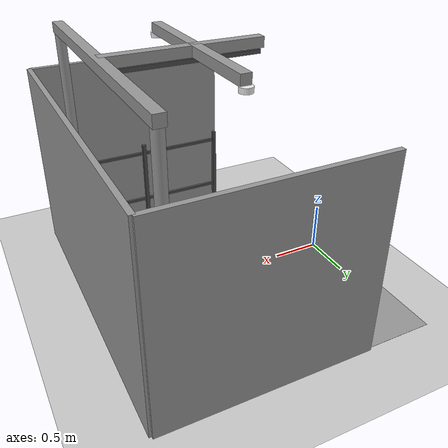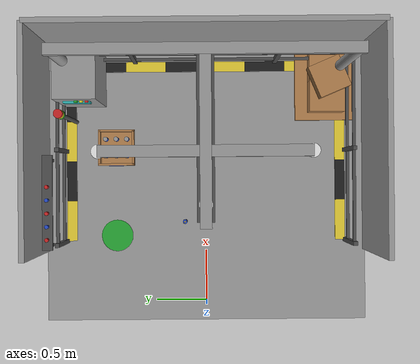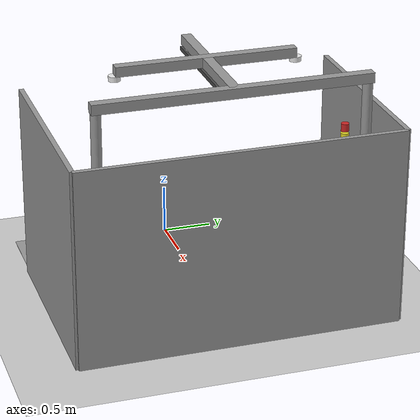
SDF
<sdf version="1.4">
 <world name="bimanual_manipulation_world">
  <include><uri>model://sun</uri></include>
  <include><uri>model://ground_plane</uri></include>
  <model name="placement_area_final_left">
   <static>true</static>
   <pose>0.680 0.85 0.701 0 0 0</pose>
   <link name="link">
    <visual name="vis">
     <geometry><cylinder><radius>0.15</radius><length>0.002</length></cylinder></geometry>
     <material>
      <script><uri>file://media/materials/scripts/gazebo.material</uri><name>Gazebo/Green</name></script>
     </material>
    </visual>
   </link>
  </model>
  <model name="blue_cylinder">
   <static>false</static>
   <pose>0.810 0.20 0.730 0 0 0</pose>
   <link name="link">
    <inertial>
     <mass>0.15</mass>
     <inertia>
      <ixx>0.000309</ixx>
      <iyy>0.000309</iyy>
      <izz>0.000030</izz>
      <ixy>0</ixy>
      <ixz>0</ixz>
      <iyz>0</iyz>
     </inertia>
    </inertial>
    <collision name="col">
     <geometry><cylinder><radius>0.02</radius><length>0.16</length></cylinder></geometry>
     <surface>
      <contact>
       <ode>
        <soft_cfm>0.0</soft_cfm>
        <soft_erp>0.5</soft_erp>
        <kp>20000</kp>
        <kd>50</kd>
        <max_vel>1.0</max_vel>
        <min_depth>0.001</min_depth>
       </ode>
      </contact>
      <friction><ode><mu>0.6</mu><mu2>0.6</mu2></ode></friction>
     </surface>
    </collision>
    <visual name="vis">
     <geometry><cylinder><radius>0.02</radius><length>0.16</length></cylinder></geometry>
     <material>
      <script><uri>file://media/materials/scripts/gazebo.material</uri><name>Gazebo/Blue</name></script>
     </material>
    </visual>
    <visual name="cap_top">
     <pose>0 0 0.0725 0 0 0</pose>
     <geometry><cylinder><radius>0.0205</radius><length>0.0149</length></cylinder></geometry>
     <material>
      <script><uri>file://media/materials/scripts/gazebo.material</uri><name>Gazebo/Grey</name></script>
     </material>
    </visual>
    <visual name="terminal_nub">
     <pose>0 0 0.0843 0 0 0</pose>
     <geometry><cylinder><radius>0.008</radius><length>0.0085</length></cylinder></geometry>
     <material>
      <script><uri>file://media/materials/scripts/gazebo.material</uri><name>Gazebo/Gold</name></script>
     </material>
    </visual>
    <visual name="cap_bottom">
     <pose>0 0 -0.0736 0 0 0</pose>
     <geometry><cylinder><radius>0.0205</radius><length>0.0128</length></cylinder></geometry>
     <material>
      <script><uri>file://media/materials/scripts/gazebo.material</uri><name>Gazebo/DarkGrey</name></script>
     </material>
    </visual>
    <visual name="label_band_top">
     <pose>0 0 0.0373 0 0 0</pose>
     <geometry><cylinder><radius>0.0206</radius><length>0.0107</length></cylinder></geometry>
     <material>
      <script><uri>file://media/materials/scripts/gazebo.material</uri><name>Gazebo/FlatBlack</name></script>
     </material>
    </visual>
    <visual name="label_band_bottom">
     <pose>0 0 -0.0373 0 0 0</pose>
     <geometry><cylinder><radius>0.0206</radius><length>0.0107</length></cylinder></geometry>
     <material>
      <script><uri>file://media/materials/scripts/gazebo.material</uri><name>Gazebo/FlatBlack</name></script>
     </material>
    </visual>
    <visual name="label_patch">
     <geometry><cylinder><radius>0.0207</radius><length>0.0320</length></cylinder></geometry>
     <material>
      <script><uri>file://media/materials/scripts/gazebo.material</uri><name>Gazebo/White</name></script>
     </material>
    </visual>
   </link>
  </model>
  <model name="battery_chest_left">
   <static>true</static>
   <pose>1.52 0.85 0 0 0 0</pose>
   <link name="link">
    <visual name="chest_floor">
     <pose>0 0 0.710 0 0 0</pose>
     <geometry><box><size>0.34 0.34 0.02</size></box></geometry>
     <material>
      <script><uri>file://media/materials/scripts/gazebo.material</uri><name>Gazebo/Wood</name></script>
     </material>
    </visual>
    <visual name="wall_far">
     <pose>0.16 0 0.790 0 0 0</pose>
     <geometry><box><size>0.02 0.34 0.14</size></box></geometry>
     <material>
      <script><uri>file://media/materials/scripts/gazebo.material</uri><name>Gazebo/Wood</name></script>
     </material>
    </visual>
    <visual name="wall_near">
     <pose>-0.16 0 0.790 0 0 0</pose>
     <geometry><box><size>0.02 0.34 0.14</size></box></geometry>
     <material>
      <script><uri>file://media/materials/scripts/gazebo.material</uri><name>Gazebo/Wood</name></script>
     </material>
    </visual>
    <visual name="wall_outer">
     <pose>0 0.16 0.790 0 0 0</pose>
     <geometry><box><size>0.34 0.02 0.14</size></box></geometry>
     <material>
      <script><uri>file://media/materials/scripts/gazebo.material</uri><name>Gazebo/Wood</name></script>
     </material>
    </visual>
    <visual name="wall_inner">
     <pose>0 -0.16 0.790 0 0 0</pose>
     <geometry><box><size>0.34 0.02 0.14</size></box></geometry>
     <material>
      <script><uri>file://media/materials/scripts/gazebo.material</uri><name>Gazebo/Wood</name></script>
     </material>
    </visual>
    <visual name="label_plate">
     <pose>-0.172 0 0.790 0 0 0</pose>
     <geometry><box><size>0.005 0.14 0.06</size></box></geometry>
     <material>
      <script><uri>file://media/materials/scripts/gazebo.material</uri><name>Gazebo/Blue</name></script>
     </material>
    </visual>
    <visual name="battery_1">
     <pose>-0.08 0.10 0.795 0 0 0</pose>
     <geometry><cylinder><radius>0.02</radius><length>0.15</length></cylinder></geometry>
     <material>
      <script><uri>file://media/materials/scripts/gazebo.material</uri><name>Gazebo/Blue</name></script>
     </material>
    </visual>
    <visual name="battery_1_cap">
     <pose>-0.08 0.10 0.876 0 0 0</pose>
     <geometry><cylinder><radius>0.021</radius><length>0.012</length></cylinder></geometry>
     <material>
      <script><uri>file://media/materials/scripts/gazebo.material</uri><name>Gazebo/Grey</name></script>
     </material>
    </visual>
    <visual name="battery_2">
     <pose>-0.08 0.00 0.795 0 0 0</pose>
     <geometry><cylinder><radius>0.02</radius><length>0.15</length></cylinder></geometry>
     <material>
      <script><uri>file://media/materials/scripts/gazebo.material</uri><name>Gazebo/Blue</name></script>
     </material>
    </visual>
    <visual name="battery_2_cap">
     <pose>-0.08 0.00 0.876 0 0 0</pose>
     <geometry><cylinder><radius>0.021</radius><length>0.012</length></cylinder></geometry>
     <material>
      <script><uri>file://media/materials/scripts/gazebo.material</uri><name>Gazebo/Grey</name></script>
     </material>
    </visual>
    <visual name="battery_3">
     <pose>-0.08 -0.10 0.795 0 0 0</pose>
     <geometry><cylinder><radius>0.02</radius><length>0.15</length></cylinder></geometry>
     <material>
      <script><uri>file://media/materials/scripts/gazebo.material</uri><name>Gazebo/Blue</name></script>
     </material>
    </visual>
    <visual name="battery_3_cap">
     <pose>-0.08 -0.10 0.876 0 0 0</pose>
     <geometry><cylinder><radius>0.021</radius><length>0.012</length></cylinder></geometry>
     <material>
      <script><uri>file://media/materials/scripts/gazebo.material</uri><name>Gazebo/Grey</name></script>
     </material>
    </visual>
    <visual name="battery_4">
     <pose>0.08 0.10 0.795 0 0 0</pose>
     <geometry><cylinder><radius>0.02</radius><length>0.15</length></cylinder></geometry>
     <material>
      <script><uri>file://media/materials/scripts/gazebo.material</uri><name>Gazebo/Blue</name></script>
     </material>
    </visual>
    <visual name="battery_4_cap">
     <pose>0.08 0.10 0.876 0 0 0</pose>
     <geometry><cylinder><radius>0.021</radius><length>0.012</length></cylinder></geometry>
     <material>
      <script><uri>file://media/materials/scripts/gazebo.material</uri><name>Gazebo/Grey</name></script>
     </material>
    </visual>
    <visual name="battery_5">
     <pose>0.08 0.00 0.795 0 0 0</pose>
     <geometry><cylinder><radius>0.02</radius><length>0.15</length></cylinder></geometry>
     <material>
      <script><uri>file://media/materials/scripts/gazebo.material</uri><name>Gazebo/Blue</name></script>
     </material>
    </visual>
    <visual name="battery_5_cap">
     <pose>0.08 0.00 0.876 0 0 0</pose>
     <geometry><cylinder><radius>0.021</radius><length>0.012</length></cylinder></geometry>
     <material>
      <script><uri>file://media/materials/scripts/gazebo.material</uri><name>Gazebo/Grey</name></script>
     </material>
    </visual>
    <visual name="battery_6">
     <pose>0.08 -0.10 0.795 0 0 0</pose>
     <geometry><cylinder><radius>0.02</radius><length>0.15</length></cylinder></geometry>
     <material>
      <script><uri>file://media/materials/scripts/gazebo.material</uri><name>Gazebo/Blue</name></script>
     </material>
    </visual>
    <visual name="battery_6_cap">
     <pose>0.08 -0.10 0.876 0 0 0</pose>
     <geometry><cylinder><radius>0.021</radius><length>0.012</length></cylinder></geometry>
     <material>
      <script><uri>file://media/materials/scripts/gazebo.material</uri><name>Gazebo/Grey</name></script>
     </material>
    </visual>
   </link>
  </model>
  <model name="cell_floor">
   <static>true</static>
   <pose>1.2 0.0 0.001 0 0 0</pose>
   <link name="link">
    <visual name="vis">
     <geometry><box><size>2.8 3.2 0.002</size></box></geometry>
     <material>
      <script><uri>file://media/materials/scripts/gazebo.material</uri><name>Gazebo/Grey</name></script>
     </material>
    </visual>
   </link>
  </model>
  <model name="cell_hazard_stripes">
   <static>true</static>
   <pose>0 0 0.006 0 0 0</pose>
   <link name="link">
    <visual name="back_1">
     <pose>2.35 -1.00 0 0 0 0</pose>
     <geometry><box><size>0.10 0.40 0.01</size></box></geometry>
     <material>
      <script><uri>file://media/materials/scripts/gazebo.material</uri><name>Gazebo/ZincYellow</name></script>
     </material>
    </visual>
    <visual name="back_2">
     <pose>2.35 -0.60 0 0 0 0</pose>
     <geometry><box><size>0.10 0.40 0.01</size></box></geometry>
     <material>
      <script><uri>file://media/materials/scripts/gazebo.material</uri><name>Gazebo/FlatBlack</name></script>
     </material>
    </visual>
    <visual name="back_3">
     <pose>2.35 -0.20 0 0 0 0</pose>
     <geometry><box><size>0.10 0.40 0.01</size></box></geometry>
     <material>
      <script><uri>file://media/materials/scripts/gazebo.material</uri><name>Gazebo/ZincYellow</name></script>
     </material>
    </visual>
    <visual name="back_4">
     <pose>2.35 0.20 0 0 0 0</pose>
     <geometry><box><size>0.10 0.40 0.01</size></box></geometry>
     <material>
      <script><uri>file://media/materials/scripts/gazebo.material</uri><name>Gazebo/FlatBlack</name></script>
     </material>
    </visual>
    <visual name="back_5">
     <pose>2.35 0.60 0 0 0 0</pose>
     <geometry><box><size>0.10 0.40 0.01</size></box></geometry>
     <material>
      <script><uri>file://media/materials/scripts/gazebo.material</uri><name>Gazebo/ZincYellow</name></script>
     </material>
    </visual>
    <visual name="back_6">
     <pose>2.35 1.00 0 0 0 0</pose>
     <geometry><box><size>0.10 0.40 0.01</size></box></geometry>
     <material>
      <script><uri>file://media/materials/scripts/gazebo.material</uri><name>Gazebo/FlatBlack</name></script>
     </material>
    </visual>
    <visual name="left_1">
     <pose>0.80 1.35 0 0 0 0</pose>
     <geometry><box><size>0.40 0.10 0.01</size></box></geometry>
     <material>
      <script><uri>file://media/materials/scripts/gazebo.material</uri><name>Gazebo/ZincYellow</name></script>
     </material>
    </visual>
    <visual name="left_2">
     <pose>1.20 1.35 0 0 0 0</pose>
     <geometry><box><size>0.40 0.10 0.01</size></box></geometry>
     <material>
      <script><uri>file://media/materials/scripts/gazebo.material</uri><name>Gazebo/FlatBlack</name></script>
     </material>
    </visual>
    <visual name="left_3">
     <pose>1.60 1.35 0 0 0 0</pose>
     <geometry><box><size>0.40 0.10 0.01</size></box></geometry>
     <material>
      <script><uri>file://media/materials/scripts/gazebo.material</uri><name>Gazebo/ZincYellow</name></script>
     </material>
    </visual>
    <visual name="left_4">
     <pose>2.00 1.35 0 0 0 0</pose>
     <geometry><box><size>0.40 0.10 0.01</size></box></geometry>
     <material>
      <script><uri>file://media/materials/scripts/gazebo.material</uri><name>Gazebo/FlatBlack</name></script>
     </material>
    </visual>
    <visual name="right_1">
     <pose>0.80 -1.35 0 0 0 0</pose>
     <geometry><box><size>0.40 0.10 0.01</size></box></geometry>
     <material>
      <script><uri>file://media/materials/scripts/gazebo.material</uri><name>Gazebo/ZincYellow</name></script>
     </material>
    </visual>
    <visual name="right_2">
     <pose>1.20 -1.35 0 0 0 0</pose>
     <geometry><box><size>0.40 0.10 0.01</size></box></geometry>
     <material>
      <script><uri>file://media/materials/scripts/gazebo.material</uri><name>Gazebo/FlatBlack</name></script>
     </material>
    </visual>
    <visual name="right_3">
     <pose>1.60 -1.35 0 0 0 0</pose>
     <geometry><box><size>0.40 0.10 0.01</size></box></geometry>
     <material>
      <script><uri>file://media/materials/scripts/gazebo.material</uri><name>Gazebo/ZincYellow</name></script>
     </material>
    </visual>
    <visual name="right_4">
     <pose>2.00 -1.35 0 0 0 0</pose>
     <geometry><box><size>0.40 0.10 0.01</size></box></geometry>
     <material>
      <script><uri>file://media/materials/scripts/gazebo.material</uri><name>Gazebo/FlatBlack</name></script>
     </material>
    </visual>
   </link>
  </model>
  <model name="safety_fence">
   <static>true</static>
   <pose>0 0 0.5 0 0 0</pose>
   <link name="link">
    <visual name="post_back_1">
     <pose>2.40 -1.40 0 0 0 0</pose>
     <geometry><box><size>0.04 0.04 1.0</size></box></geometry>
     <material>
      <script><uri>file://media/materials/scripts/gazebo.material</uri><name>Gazebo/DarkGrey</name></script>
     </material>
    </visual>
    <visual name="post_back_2">
     <pose>2.40 -0.70 0 0 0 0</pose>
     <geometry><box><size>0.04 0.04 1.0</size></box></geometry>
     <material>
      <script><uri>file://media/materials/scripts/gazebo.material</uri><name>Gazebo/DarkGrey</name></script>
     </material>
    </visual>
    <visual name="post_back_3">
     <pose>2.40 0.00 0 0 0 0</pose>
     <geometry><box><size>0.04 0.04 1.0</size></box></geometry>
     <material>
      <script><uri>file://media/materials/scripts/gazebo.material</uri><name>Gazebo/DarkGrey</name></script>
     </material>
    </visual>
    <visual name="post_back_4">
     <pose>2.40 0.70 0 0 0 0</pose>
     <geometry><box><size>0.04 0.04 1.0</size></box></geometry>
     <material>
      <script><uri>file://media/materials/scripts/gazebo.material</uri><name>Gazebo/DarkGrey</name></script>
     </material>
    </visual>
    <visual name="post_back_5">
     <pose>2.40 1.40 0 0 0 0</pose>
     <geometry><box><size>0.04 0.04 1.0</size></box></geometry>
     <material>
      <script><uri>file://media/materials/scripts/gazebo.material</uri><name>Gazebo/DarkGrey</name></script>
     </material>
    </visual>
    <visual name="post_left_1">
     <pose>0.60 1.40 0 0 0 0</pose>
     <geometry><box><size>0.04 0.04 1.0</size></box></geometry>
     <material>
      <script><uri>file://media/materials/scripts/gazebo.material</uri><name>Gazebo/DarkGrey</name></script>
     </material>
    </visual>
    <visual name="post_left_2">
     <pose>1.50 1.40 0 0 0 0</pose>
     <geometry><box><size>0.04 0.04 1.0</size></box></geometry>
     <material>
      <script><uri>file://media/materials/scripts/gazebo.material</uri><name>Gazebo/DarkGrey</name></script>
     </material>
    </visual>
    <visual name="post_right_1">
     <pose>0.60 -1.40 0 0 0 0</pose>
     <geometry><box><size>0.04 0.04 1.0</size></box></geometry>
     <material>
      <script><uri>file://media/materials/scripts/gazebo.material</uri><name>Gazebo/DarkGrey</name></script>
     </material>
    </visual>
    <visual name="post_right_2">
     <pose>1.50 -1.40 0 0 0 0</pose>
     <geometry><box><size>0.04 0.04 1.0</size></box></geometry>
     <material>
      <script><uri>file://media/materials/scripts/gazebo.material</uri><name>Gazebo/DarkGrey</name></script>
     </material>
    </visual>
    <visual name="rail_back_top">
     <pose>2.40 0.0 0.4 0 0 0</pose>
     <geometry><box><size>0.03 2.80 0.03</size></box></geometry>
     <material>
      <script><uri>file://media/materials/scripts/gazebo.material</uri><name>Gazebo/DarkGrey</name></script>
     </material>
    </visual>
    <visual name="rail_back_bottom">
     <pose>2.40 0.0 -0.2 0 0 0</pose>
     <geometry><box><size>0.03 2.80 0.03</size></box></geometry>
     <material>
      <script><uri>file://media/materials/scripts/gazebo.material</uri><name>Gazebo/DarkGrey</name></script>
     </material>
    </visual>
    <visual name="rail_left_top">
     <pose>1.50 1.40 0.4 0 0 0</pose>
     <geometry><box><size>1.80 0.03 0.03</size></box></geometry>
     <material>
      <script><uri>file://media/materials/scripts/gazebo.material</uri><name>Gazebo/DarkGrey</name></script>
     </material>
    </visual>
    <visual name="rail_left_bottom">
     <pose>1.50 1.40 -0.2 0 0 0</pose>
     <geometry><box><size>1.80 0.03 0.03</size></box></geometry>
     <material>
      <script><uri>file://media/materials/scripts/gazebo.material</uri><name>Gazebo/DarkGrey</name></script>
     </material>
    </visual>
    <visual name="rail_right_top">
     <pose>1.50 -1.40 0.4 0 0 0</pose>
     <geometry><box><size>1.80 0.03 0.03</size></box></geometry>
     <material>
      <script><uri>file://media/materials/scripts/gazebo.material</uri><name>Gazebo/DarkGrey</name></script>
     </material>
    </visual>
    <visual name="rail_right_bottom">
     <pose>1.50 -1.40 -0.2 0 0 0</pose>
     <geometry><box><size>1.80 0.03 0.03</size></box></geometry>
     <material>
      <script><uri>file://media/materials/scripts/gazebo.material</uri><name>Gazebo/DarkGrey</name></script>
     </material>
    </visual>
   </link>
  </model>
  <model name="cell_walls">
   <static>true</static>
   <pose>0 0 1.0 0 0 0</pose>
   <link name="link">
    <visual name="wall_back">
     <pose>2.60 0.0 0 0 0 0</pose>
     <geometry><box><size>0.05 3.2 2.0</size></box></geometry>
     <material>
      <script><uri>file://media/materials/scripts/gazebo.material</uri><name>Gazebo/Grey</name></script>
     </material>
    </visual>
    <visual name="wall_left">
     <pose>1.55 1.60 0 0 0 0</pose>
     <geometry><box><size>2.10 0.05 2.0</size></box></geometry>
     <material>
      <script><uri>file://media/materials/scripts/gazebo.material</uri><name>Gazebo/Grey</name></script>
     </material>
    </visual>
    <visual name="wall_right">
     <pose>1.55 -1.60 0 0 0 0</pose>
     <geometry><box><size>2.10 0.05 2.0</size></box></geometry>
     <material>
      <script><uri>file://media/materials/scripts/gazebo.material</uri><name>Gazebo/Grey</name></script>
     </material>
    </visual>
   </link>
  </model>
  <model name="overhead_gantry">
   <static>true</static>
   <link name="link">
    <visual name="column_left">
     <pose>2.30 1.30 1.2 0 0 0</pose>
     <geometry><cylinder><radius>0.05</radius><length>2.4</length></cylinder></geometry>
     <material>
      <script><uri>file://media/materials/scripts/gazebo.material</uri><name>Gazebo/Grey</name></script>
     </material>
    </visual>
    <visual name="column_right">
     <pose>2.30 -1.30 1.2 0 0 0</pose>
     <geometry><cylinder><radius>0.05</radius><length>2.4</length></cylinder></geometry>
     <material>
      <script><uri>file://media/materials/scripts/gazebo.material</uri><name>Gazebo/Grey</name></script>
     </material>
    </visual>
    <visual name="beam_back">
     <pose>2.30 0.0 2.45 0 0 0</pose>
     <geometry><box><size>0.10 2.70 0.10</size></box></geometry>
     <material>
      <script><uri>file://media/materials/scripts/gazebo.material</uri><name>Gazebo/Grey</name></script>
     </material>
    </visual>
    <visual name="beam_centerline">
     <pose>1.55 0.0 2.45 0 0 0</pose>
     <geometry><box><size>1.50 0.10 0.10</size></box></geometry>
     <material>
      <script><uri>file://media/materials/scripts/gazebo.material</uri><name>Gazebo/Grey</name></script>
     </material>
    </visual>
    <visual name="beam_branch_conveyor">
     <pose>1.45 0.0 2.45 0 0 0</pose>
     <geometry><box><size>0.10 1.80 0.10</size></box></geometry>
     <material>
      <script><uri>file://media/materials/scripts/gazebo.material</uri><name>Gazebo/Grey</name></script>
     </material>
    </visual>
    <visual name="cable_tray">
     <pose>1.55 0.0 2.38 0 0 0</pose>
     <geometry><box><size>1.40 0.15 0.04</size></box></geometry>
     <material>
      <script><uri>file://media/materials/scripts/gazebo.material</uri><name>Gazebo/DarkGrey</name></script>
     </material>
    </visual>
    <visual name="light_fixture_table">
     <pose>1.00 0.0 2.38 0 0 0</pose>
     <geometry><cylinder><radius>0.06</radius><length>0.05</length></cylinder></geometry>
     <material>
      <script><uri>file://media/materials/scripts/gazebo.material</uri><name>Gazebo/WhiteGlow</name></script>
     </material>
    </visual>
    <visual name="light_fixture_conveyor_right">
     <pose>1.45 -0.90 2.38 0 0 0</pose>
     <geometry><cylinder><radius>0.06</radius><length>0.05</length></cylinder></geometry>
     <material>
      <script><uri>file://media/materials/scripts/gazebo.material</uri><name>Gazebo/WhiteGlow</name></script>
     </material>
    </visual>
    <visual name="light_fixture_conveyor_left">
     <pose>1.45 0.90 2.38 0 0 0</pose>
     <geometry><cylinder><radius>0.06</radius><length>0.05</length></cylinder></geometry>
     <material>
      <script><uri>file://media/materials/scripts/gazebo.material</uri><name>Gazebo/WhiteGlow</name></script>
     </material>
    </visual>
   </link>
  </model>
  <model name="control_cabinet">
   <static>true</static>
   <link name="link">
    <visual name="body">
     <pose>2.20 1.20 0.70 0 0 0</pose>
     <geometry><box><size>0.5 0.4 1.4</size></box></geometry>
     <material>
      <script><uri>file://media/materials/scripts/gazebo.material</uri><name>Gazebo/Grey</name></script>
     </material>
    </visual>
    <visual name="hmi_panel">
     <pose>1.94 1.20 1.00 0 0 0</pose>
     <geometry><box><size>0.02 0.25 0.20</size></box></geometry>
     <material>
      <script><uri>file://media/materials/scripts/gazebo.material</uri><name>Gazebo/Turquoise</name></script>
     </material>
    </visual>
    <visual name="indicator_red">
     <pose>1.94 1.10 1.15 0 1.5708 0</pose>
     <geometry><cylinder><radius>0.02</radius><length>0.02</length></cylinder></geometry>
     <material>
      <script><uri>file://media/materials/scripts/gazebo.material</uri><name>Gazebo/RedGlow</name></script>
     </material>
    </visual>
    <visual name="indicator_yellow">
     <pose>1.94 1.15 1.15 0 1.5708 0</pose>
     <geometry><cylinder><radius>0.02</radius><length>0.02</length></cylinder></geometry>
     <material>
      <script><uri>file://media/materials/scripts/gazebo.material</uri><name>Gazebo/YellowGlow</name></script>
     </material>
    </visual>
    <visual name="indicator_green">
     <pose>1.94 1.20 1.15 0 1.5708 0</pose>
     <geometry><cylinder><radius>0.02</radius><length>0.02</length></cylinder></geometry>
     <material>
      <script><uri>file://media/materials/scripts/gazebo.material</uri><name>Gazebo/GreenGlow</name></script>
     </material>
    </visual>
   </link>
  </model>
  <model name="andon_tower">
   <static>true</static>
   <link name="link">
    <visual name="post">
     <pose>1.80 1.30 0.75 0 0 0</pose>
     <geometry><cylinder><radius>0.02</radius><length>1.5</length></cylinder></geometry>
     <material>
      <script><uri>file://media/materials/scripts/gazebo.material</uri><name>Gazebo/DarkGrey</name></script>
     </material>
    </visual>
    <visual name="lens_green">
     <pose>1.80 1.30 1.55 0 0 0</pose>
     <geometry><cylinder><radius>0.04</radius><length>0.08</length></cylinder></geometry>
     <material>
      <script><uri>file://media/materials/scripts/gazebo.material</uri><name>Gazebo/GreenGlow</name></script>
     </material>
    </visual>
    <visual name="lens_yellow">
     <pose>1.80 1.30 1.65 0 0 0</pose>
     <geometry><cylinder><radius>0.04</radius><length>0.08</length></cylinder></geometry>
     <material>
      <script><uri>file://media/materials/scripts/gazebo.material</uri><name>Gazebo/YellowGlow</name></script>
     </material>
    </visual>
    <visual name="lens_red">
     <pose>1.80 1.30 1.75 0 0 0</pose>
     <geometry><cylinder><radius>0.04</radius><length>0.08</length></cylinder></geometry>
     <material>
      <script><uri>file://media/materials/scripts/gazebo.material</uri><name>Gazebo/RedGlow</name></script>
     </material>
    </visual>
   </link>
  </model>
  <model name="pallet_stack">
   <static>true</static>
   <link name="link">
    <visual name="pallet">
     <pose>2.20 -1.20 0.04 0 0 0</pose>
     <geometry><box><size>0.8 0.6 0.08</size></box></geometry>
     <material>
      <script><uri>file://media/materials/scripts/gazebo.material</uri><name>Gazebo/WoodPallet</name></script>
     </material>
    </visual>
    <visual name="crate_1">
     <pose>2.05 -1.20 0.23 0 0 0</pose>
     <geometry><box><size>0.35 0.35 0.30</size></box></geometry>
     <material>
      <script><uri>file://media/materials/scripts/gazebo.material</uri><name>Gazebo/Wood</name></script>
     </material>
    </visual>
    <visual name="crate_2">
     <pose>2.35 -1.20 0.23 0 0 0</pose>
     <geometry><box><size>0.35 0.35 0.30</size></box></geometry>
     <material>
      <script><uri>file://media/materials/scripts/gazebo.material</uri><name>Gazebo/Wood</name></script>
     </material>
    </visual>
    <visual name="crate_top">
     <pose>2.20 -1.20 0.53 0 0 0.4</pose>
     <geometry><box><size>0.32 0.32 0.28</size></box></geometry>
     <material>
      <script><uri>file://media/materials/scripts/gazebo.material</uri><name>Gazebo/Wood</name></script>
     </material>
    </visual>
   </link>
  </model>
  <model name="battery_charging_rack">
   <static>true</static>
   <link name="link">
    <visual name="shelf">
     <pose>1.00 1.50 0.90 0 0 0</pose>
     <geometry><box><size>0.9 0.10 0.03</size></box></geometry>
     <material>
      <script><uri>file://media/materials/scripts/gazebo.material</uri><name>Gazebo/DarkGrey</name></script>
     </material>
    </visual>
    <visual name="bracket_left">
     <pose>0.60 1.50 0.825 0 0 0</pose>
     <geometry><box><size>0.03 0.10 0.15</size></box></geometry>
     <material>
      <script><uri>file://media/materials/scripts/gazebo.material</uri><name>Gazebo/DarkGrey</name></script>
     </material>
    </visual>
    <visual name="bracket_right">
     <pose>1.40 1.50 0.825 0 0 0</pose>
     <geometry><box><size>0.03 0.10 0.15</size></box></geometry>
     <material>
      <script><uri>file://media/materials/scripts/gazebo.material</uri><name>Gazebo/DarkGrey</name></script>
     </material>
    </visual>
    <visual name="battery_1">
     <pose>0.65 1.50 0.96 0 0 0</pose>
     <geometry><cylinder><radius>0.018</radius><length>0.09</length></cylinder></geometry>
     <material>
      <script><uri>file://media/materials/scripts/gazebo.material</uri><name>Gazebo/Red</name></script>
     </material>
    </visual>
    <visual name="battery_2">
     <pose>0.775 1.50 0.96 0 0 0</pose>
     <geometry><cylinder><radius>0.018</radius><length>0.09</length></cylinder></geometry>
     <material>
      <script><uri>file://media/materials/scripts/gazebo.material</uri><name>Gazebo/Blue</name></script>
     </material>
    </visual>
    <visual name="battery_3">
     <pose>0.90 1.50 0.96 0 0 0</pose>
     <geometry><cylinder><radius>0.018</radius><length>0.09</length></cylinder></geometry>
     <material>
      <script><uri>file://media/materials/scripts/gazebo.material</uri><name>Gazebo/Red</name></script>
     </material>
    </visual>
    <visual name="battery_4">
     <pose>1.025 1.50 0.96 0 0 0</pose>
     <geometry><cylinder><radius>0.018</radius><length>0.09</length></cylinder></geometry>
     <material>
      <script><uri>file://media/materials/scripts/gazebo.material</uri><name>Gazebo/Blue</name></script>
     </material>
    </visual>
    <visual name="battery_5">
     <pose>1.15 1.50 0.96 0 0 0</pose>
     <geometry><cylinder><radius>0.018</radius><length>0.09</length></cylinder></geometry>
     <material>
      <script><uri>file://media/materials/scripts/gazebo.material</uri><name>Gazebo/Red</name></script>
     </material>
    </visual>
   </link>
  </model>
 </world>
</sdf>
